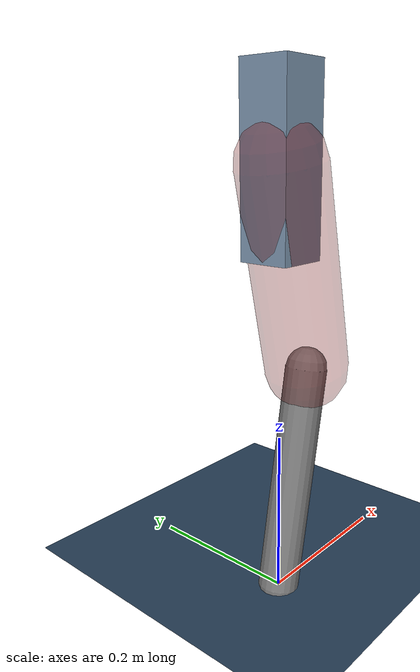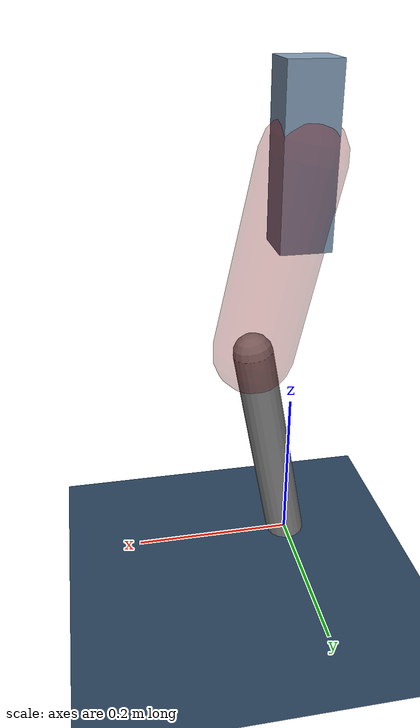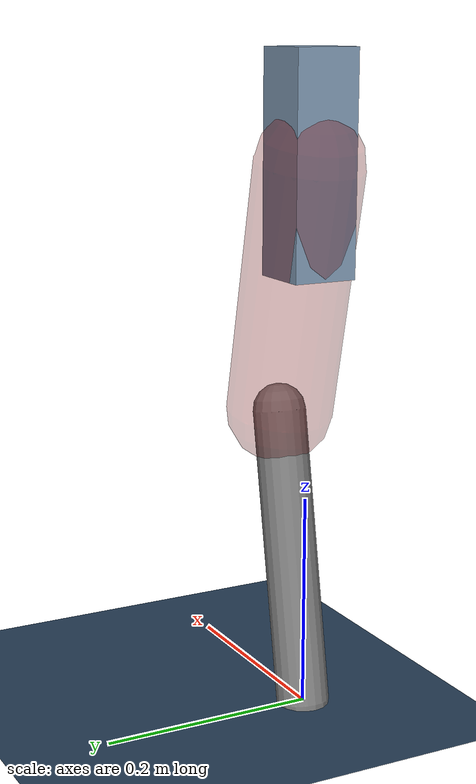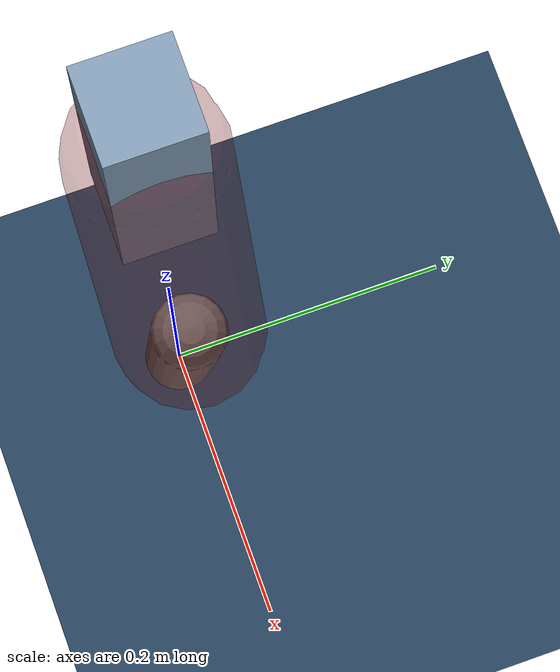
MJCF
<mujoco model="Hopper2D">
	<compiler inertiafromgeom="true" angle="radian" />
	<option timestep="0.001" integrator="implicit" cone="elliptic" solver="Newton" tolerance="1e-10" />

	<default>
		<geom contype="1" conaffinity="1" condim="3" friction="2 0.005 0.0001" solref="0.005 1" />
		<joint limited="true" damping="0.1" />
	</default>

	<asset>
		<texture name="skybox" type="skybox" builtin="gradient" rgb1=".4 .6 .8" rgb2="0 0 0" width="800" height="800" />
		<texture name="grid" type="2d" builtin="checker" rgb1=".1 .2 .3" rgb2=".2 .3 .4" width="300" height="300" mark="edge" markrgb=".2 .3 .4" />
		<material name="ground" texture="grid" texrepeat="1 1" texuniform="true" reflectance="0.1" />
		<material name="leg" rgba="0.5 0.6 0.7 1" />
	</asset>

	<worldbody>

		<geom name="floor" type="plane" size="5 5 0.25" material="ground" />

		<light directional="false" diffuse="0.8 0.8 0.8" specular="0.3 0.3 0.3" pos="0 0 2" dir="0 0 -1" />
		<light mode="targetbodycom" target="base" directional="false" diffuse="0.8 0.8 0.8" specular="0.3 0.3 0.3" pos="0 0 2" dir="0 0 -1" />

		<camera name="fixed" pos="0 -2 1" xyaxes="1 0 0 0 0 1" />
		<camera name="tracking" mode="trackcom" pos="0 -3 1" />

		<body name="root" pos="0 0 0.5063882833350515">
			<joint name="slide_x" type="slide" axis="1 0 0" range="-100 100" />
			<joint name="slide_z" type="slide" axis="0 0 1" range="0 10" />

			<body name="base" pos="0 0 0">
				<geom name="torso" type="box" size="0.03 0.03 0.1" mass="3.306" material="leg" />

				<body name="link1" pos="0 0 0" euler="0 1.3570748339605445 0">
					<joint type="hinge" axis="0 -1 0" pos="0 0 0" name="hinge1" limited="true" range="-3.14 3.14" stiffness="0" damping="0.1" />
					<geom name="thigh" type="capsule" fromto="0 0 0 0.23762111925585852 0 0" size="0.05" rgba="0.5 0 0 0.3" mass="0.8245149100652321" />

					<body name="link2" pos="0.23762111925585852 0 0" euler="0 0.3955136448879192 0">
						<joint type="hinge" axis="0 -1 0" pos="0 0 0" name="hinge2" limited="true" range="-3.14 3.14" stiffness="0" damping="0.1" />
						<geom name="shank" type="capsule" fromto="0 0 0 0.278767164079193 0 0" size="0.025" mass="0.46611373126335437" />

					</body>
				</body>
			</body>
		</body>
	</worldbody>

	<actuator>
		<motor name="torque1" joint="hinge1" ctrlrange="-168.26478423847618 168.26478423847618" ctrllimited="true" gear="1" />
		<motor name="torque2" joint="hinge2" ctrlrange="-93.49688674206497 93.49688674206497" ctrllimited="true" gear="1" />
	</actuator>
</mujoco>
